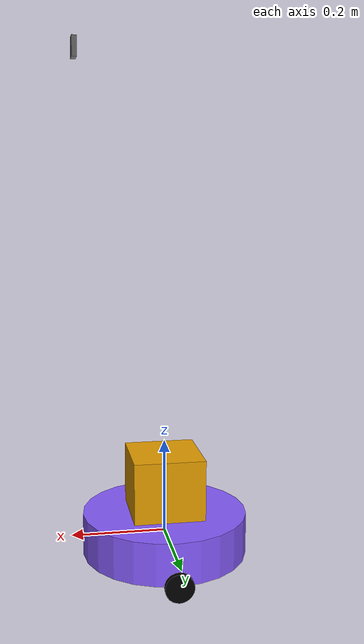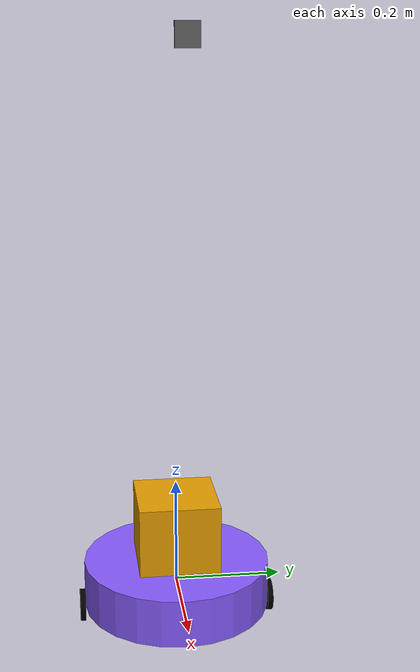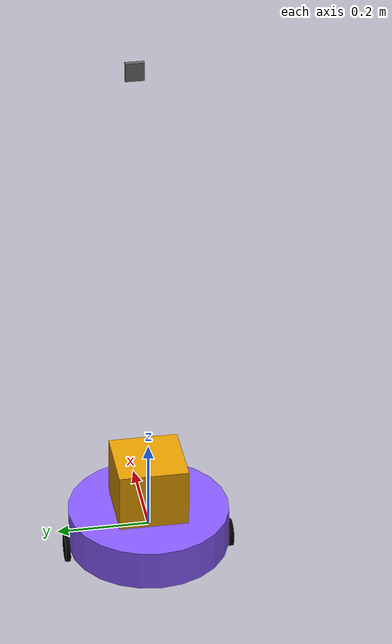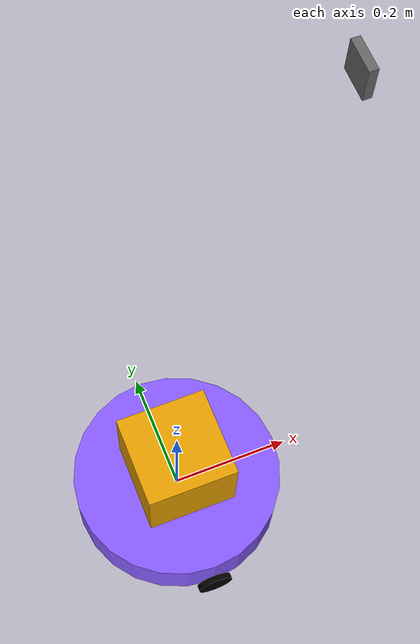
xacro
<?xml version="1.0"?>

<robot xmlns:xacro="http://www.ros.org/wiki/xacro" name="robot_vacuum">

    <xacro:include filename="diff.xacro"/>
    <xacro:include filename="inertial.xacro"/>
    <xacro:include filename="robot.urdf.xacro"/>
    <xacro:include filename="camera.xacro"/>
    <xacro:include filename="lidar.xacro"/>
    <xacro:include filename="imu.xacro"/>

</robot>

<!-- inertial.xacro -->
<robot name="robot_vacuum" xmlns:xacro="http://www.ros.org/wiki/xacro">

    <xacro:macro name="inertial_box" params="mass x y z xyz rpy">
        <inertial>
            <origin xyz="${xyz}" rpy="${rpy}"/>
            <mass value="${mass}"/>
            <inertia ixx="${(1/12) * mass * (y*y + z*z)}" ixy="0.0" ixz="0.0"
                     iyy="${(1/12) * mass * (x*x + z*z)}" iyz="0.0"
                     izz="${(1/12) * mass * (x*x + y*y)}"/>
        </inertial>
    </xacro:macro>

    <xacro:macro name="inertial_cylinder" params="mass radius length xyz rpy">
        <inertial>
            <origin xyz="${xyz}" rpy="${rpy}"/>
            <mass value="${mass}"/>
            <inertia ixx="${(1/12) * mass * (3*radius*radius + length*length)}" ixy="0.0" ixz="0.0"
                     iyy="${(1/12) * mass * (3*radius*radius + length*length)}" iyz="0.0"
                     izz="${(1/2) * mass * (radius*radius)}"/>
        </inertial>

    </xacro:macro>

    <xacro:macro name="inertial_sphere" params="mass radius xyz rpy">
        <inertial>
            <origin xyz="${xyz}" rpy="${rpy}"/>
            <mass value="${mass}"/>
            <inertia ixx="${(2/5) * mass * (radius*radius)}" ixy="0.0" ixz="0.0"
                     iyy="${(2/5) * mass * (radius*radius)}" iyz="0.0"
                     izz="${(2/5) * mass * (radius*radius)}"/>
        </inertial>
    </xacro:macro>

</robot>

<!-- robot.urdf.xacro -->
<robot xmlns:xacro="http://www.ros.org/wiki/xacro" name="robot_vacuum">

    <material name="purple">
        <color rgba="0.53 0.36 1.0 1.0"/>
    </material>

    <material name="black">
        <color rgba="0.0 0.0 0.0 1.0"/>
    </material>

    <material name="gray">
        <color rgba="0.4 0.4 0.4 1.0"/>
    </material>

    <link name="base_footprint"/>

    <link name="base_link">
        <visual>
            <origin xyz="0.0 0.0 0.0" rpy="0.0 0.0 0.0"/>
            <geometry>
                <cylinder radius="0.175" length="0.09"/>
            </geometry>
            <material name="purple"/>
        </visual>
        <collision>
            <origin xyz="0.0 0.0 0.0" rpy="0.0 0.0 0.0"/>
            <geometry>
                <cylinder radius="0.175" length="0.09"/>
            </geometry>
        </collision>
        <xacro:inertial_cylinder mass="0.5" radius="0.175" length="0.09" xyz="0 0 0" rpy="0 0 0"/>
    </link>

    <joint name="footprint_joint" type="fixed">
        <origin xyz="0.0 0.0 0.0" rpy="0.0 0.0 0.0"/>
        <parent link="base_footprint"/>
        <child link="base_link"/>
    </joint>

    <xacro:macro name = "wheel_link" params = "prefix">
        <link name="${prefix}_wheel">
            <visual>
                <origin xyz="0.0 0.0 0.0" rpy="${pi/2} 0.0 0.0"/>
                <geometry>
                    <cylinder radius="0.03" length="0.01"/>
                </geometry>
                <material name="black"/>
            </visual>
            <collision>
                <origin xyz="0.0 0.0 0.0" rpy="${pi/2} 0.0 0.0"/>
                <geometry>
                    <cylinder radius="0.03" length="0.01"/>
                </geometry>
            </collision>
            <xacro:inertial_cylinder mass="0.2" radius="0.03" length="0.01" xyz="0 0 0" rpy="0 0 0"/>
        </link>
    </xacro:macro>

    <xacro:wheel_link prefix = "right"/>
    <xacro:wheel_link prefix = "left"/>

    <xacro:macro name = "wheel_joint" params = "prefix y">
        <joint name="${prefix}_wheel_joint" type="continuous">
            <origin xyz="0.0 ${y} -0.045" rpy="0.0 0.0 0.0"/>
            <parent link="base_link"/>
            <child link="${prefix}_wheel"/>
            <axis xyz="0.0 1.0 0.0"/>
        </joint>
    </xacro:macro>

    <xacro:wheel_joint prefix = "right" y = "-0.18"/>
    <xacro:wheel_joint prefix = "left" y = "0.18"/>

    <xacro:macro name = "caster_wheel" params = "side">
        <link name="${side}_caster_wheel">
            <visual>
                <origin xyz="0.0 0.0 0.0" rpy="0.0 0.0 0.0"/>
                <geometry>
                    <sphere radius="0.015"/>
                </geometry>
                <material name="black"/>
            </visual>
            <collision>
                <origin xyz="0.0 0.0 0.0" rpy="0.0 0.0 0.0"/>
                <geometry>
                    <sphere radius="0.015"/>
                </geometry>
            </collision>
            <inertial_sphere mass="0.05" radius="0.015" xyz="0 0 0" rpy="0 0 0"/>
        </link>
    </xacro:macro>

    <xacro:caster_wheel side = "front"/>
    <xacro:caster_wheel side = "back"/>

    <xacro:macro name = "caster_wheel_joint" params = "side x">
        <joint name="${side}_caster_wheel_joint" type="fixed">
            <origin xyz="${x} 0.0 -0.06" rpy="0.0 0.0 0.0"/>
            <parent link="base_link"/>
            <child link="${side}_caster_wheel"/>
        </joint>
    </xacro:macro>

    <xacro:caster_wheel_joint side = "front" x = "0.1"/>
    <xacro:caster_wheel_joint side = "back" x = "-0.1"/>

</robot>

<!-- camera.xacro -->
<robot xmlns:xacro="http://www.ros.org/wiki/xacro" name="robot_vacuum">

    <link name="camera_link">
        <visual>
            <origin xyz="0.0 0.0 0.0" rpy="0.0 0.0 0.0"/>
            <geometry>
                <box size="0.01 0.04 0.04"/>
            </geometry>
            <material name="gray"/>
        </visual>
        <collision>
            <origin xyz="0.0 0.0 0.0" rpy="0.0 0.0 0.0"/>
            <geometry>
                <box size="0.01 0.04 0.04"/>
            </geometry>
        </collision>
        <xacro:inertial_box mass="0.01" x="0.01" y="0.04" z="0.04" xyz="0 0 0" rpy="0 0 0"/>
    </link>

    <joint name="camera_joint" type="fixed">
        <origin xyz="0.180 0.0 1.0" rpy="0.0 0.0 0.0"/>
        <parent link="base_link"/>
        <child link="camera_link"/>
    </joint>

    <gazebo reference = "camera_link">
        <material>Gazebo/Gray</material>
        <sensor name = "camera" type = "camera">
            <pose>0 0 0 0 0 0</pose>
            <visualize>true</visualize>
            <update_rate>10</update_rate>
            <camera>
                <horizontal_fov>1.089</horizontal_fov>
                <image>
                    <format>R8G8B8</format>
                    <width>640</width>
                    <height>480</height>
                </image>
                <clip>
                    <near>0.05</near>
                    <far>8.0</far>
                </clip>
            </camera>
            <plugin name = "camera_controller" filename = "libgazebo_ros_camera.so">
                <frame_name>camera_link</frame_name>
            </plugin>
        </sensor>
    </gazebo>

</robot>

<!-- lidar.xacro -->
<robot xmlns:xacro="http://www.ros.org/wiki/xacro" name="robot_vacuum">

    <link name="laser_frame">
        <visual>
            <origin xyz="0.0 0.0 0.0" rpy="0.0 0.0 0.0"/>
            <geometry>
                <cylinder radius="0.02" length="0.02"/>
            </geometry>
            <material name="gray"/>
        </visual>
        <collision>
            <origin xyz="0.0 0.0 0.0" rpy="0.0 0.0 0.0"/>
            <geometry>
                <cylinder radius="0.02" length="0.02"/>
            </geometry>
        </collision>
        <xacro:inertial_cylinder mass="0.01" radius="0.02" length="0.02" xyz="0 0 0" rpy="0 0 0"/>
    </link>

    <joint name="lidar_joint" type="fixed">
        <parent link="base_link"/>
        <child link="laser_frame"/>
        <origin xyz="0.0 0.0 0.047" rpy="0.0 0.0 0.0"/>
    </joint>

    <gazebo reference="laser_frame">
        <material>Gazebo/Gray</material>
        <sensor name="laser" type="ray">
            <pose>0 0 0 0 0 0</pose>
            <visualize>false</visualize>
            <update_rate>10</update_rate>
            <ray>
                <scan>
                    <horizontal>
                        <samples>360</samples>
                        <min_angle>-3.14</min_angle>
                        <max_angle>3.14</max_angle>
                    </horizontal>
                </scan>
                <range>
                    <min>0.3</min>
                    <max>20</max>
                </range>
            </ray>
            <plugin name="lase_controller" filename="libgazebo_ros_ray_sensor.so">
                <ros>
                    <argument>~/out:=scan</argument>
                </ros>
                <output_type>sensor_msgs/LaserScan</output_type>
                <frame_name>laser_frame</frame_name>
            </plugin>
        </sensor>
    </gazebo>

</robot>

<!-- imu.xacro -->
<robot xmlns:xacro="http://www.ros.org/wiki/xacro" >

    <!-- Link -->
    <link name="imu_link">
        <visual>
          <origin xyz="0 0 0" rpy="0 0 0" />
          <geometry>
            <box size="0.15 0.15 0.15"/>
          </geometry>
        </visual>
        <collision>
          <origin xyz="0 0 0" rpy="0 0 0" />
          <geometry>
            <box size="0.15 0.15 0.15"/>
          </geometry>
        </collision>
        <xacro:inertial_box mass="0.01" x="0.15" y="0.15" z="0.15" xyz="0 0 0" rpy="0 0 0"/>
      </link>

      <!-- Joint-->
      <joint name="imu_joint" type="fixed">
        <origin xyz="0 0 0.1" rpy="0 0 0" />
        <parent link="base_link" />
        <child link="imu_link" />
      </joint>

      <!-- Plugin-->
    <gazebo reference="imu_link">
        <sensor name="imu" type="imu">
            <always_on>true</always_on>
            <update_rate>100</update_rate>

            <imu>
            <angular_velocity>
                <x>
                <noise type="gaussian">
                    <mean>0.0</mean>
                    <stddev>2e-4</stddev>
                </noise>
                </x>
                <y>
                <noise type="gaussian">
                    <mean>0.0</mean>
                    <stddev>2e-4</stddev>
                </noise>
                </y>
                <z>
                <noise type="gaussian">
                    <mean>0.0</mean>
                    <stddev>2e-4</stddev>
                </noise>
                </z>
            </angular_velocity>
            <linear_acceleration>
                <x>
                <noise type="gaussian">
                    <mean>0.0</mean>
                    <stddev>1.7e-2</stddev>
                </noise>
                </x>
                <y>
                <noise type="gaussian">
                    <mean>0.0</mean>
                    <stddev>1.7e-2</stddev>
                </noise>
                </y>
                <z>
                <noise type="gaussian">
                    <mean>0.0</mean>
                    <stddev>1.7e-2</stddev>
                </noise>
                </z>
            </linear_acceleration>
            </imu>

            <!-- GAZEBO CLASSIC PLUGIN -->
            <plugin name="imu" filename="libgazebo_ros_imu_sensor.so">
                <frame_name>imu_link</frame_name>
            </plugin>
        </sensor>
    </gazebo>

</robot>
